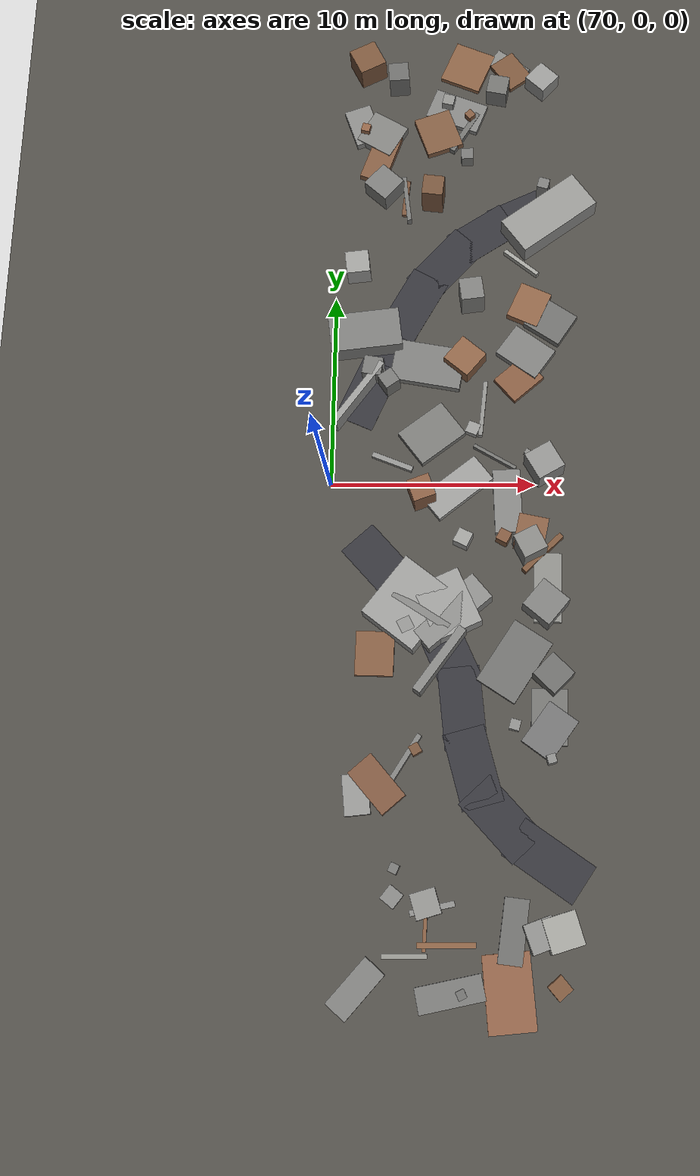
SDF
<sdf version="1.6">
 <world name="navitas_arena">
  <model name="ground_plane">
   <static>true</static>
   <link name="link">
    <collision name="collision">
     <geometry><plane><normal>0 0 1</normal><size>400 400</size></plane></geometry>
     <surface><friction><ode><mu>0.800</mu><mu2>0.800</mu2></ode></friction></surface>
    </collision>
    <visual name="visual">
     <cast_shadows>false</cast_shadows>
     <geometry><plane><normal>0 0 1</normal><size>400 400</size></plane></geometry>
     <material><ambient>0.300 0.290 0.270 1</ambient><diffuse>0.300 0.290 0.270 1</diffuse></material>
    </visual>
   </link>
  </model>
  <model name="road_zor_1_3">
   <static>true</static>
   <pose>80.295 -17.866 0.040 0 0 2.537</pose>
   <link name="link">
    <collision name="col"><geometry><box><size>3.848 2.000 0.020</size></box></geometry></collision>
    <visual name="vis">
     <geometry><box><size>3.848 2.000 0.020</size></box></geometry>
     <material><ambient>0.20 0.20 0.22 1</ambient><diffuse>0.20 0.20 0.22 1</diffuse></material>
    </visual>
   </link>
  </model>
  <model name="road_zor_1_4">
   <static>true</static>
   <pose>78.158 -16.014 0.040 0 0 2.310</pose>
   <link name="link">
    <collision name="col"><geometry><box><size>3.644 2.000 0.020</size></box></geometry></collision>
    <visual name="vis">
     <geometry><box><size>3.644 2.000 0.020</size></box></geometry>
     <material><ambient>0.20 0.20 0.22 1</ambient><diffuse>0.20 0.20 0.22 1</diffuse></material>
    </visual>
   </link>
  </model>
  <model name="road_zor_1_5">
   <static>true</static>
   <pose>76.886 -13.690 0.040 0 0 1.830</pose>
   <link name="link">
    <collision name="col"><geometry><box><size>3.611 2.000 0.020</size></box></geometry></collision>
    <visual name="vis">
     <geometry><box><size>3.611 2.000 0.020</size></box></geometry>
     <material><ambient>0.20 0.20 0.22 1</ambient><diffuse>0.20 0.20 0.22 1</diffuse></material>
    </visual>
   </link>
  </model>
  <model name="road_zor_1_6">
   <static>true</static>
   <pose>76.391 -10.910 0.040 0 0 1.670</pose>
   <link name="link">
    <collision name="col"><geometry><box><size>3.855 2.000 0.020</size></box></geometry></collision>
    <visual name="vis">
     <geometry><box><size>3.855 2.000 0.020</size></box></geometry>
     <material><ambient>0.20 0.20 0.22 1</ambient><diffuse>0.20 0.20 0.22 1</diffuse></material>
    </visual>
   </link>
  </model>
  <model name="road_zor_1_7">
   <static>true</static>
   <pose>75.702 -8.220 0.040 0 0 1.989</pose>
   <link name="link">
    <collision name="col"><geometry><box><size>3.570 2.000 0.020</size></box></geometry></collision>
    <visual name="vis">
     <geometry><box><size>3.570 2.000 0.020</size></box></geometry>
     <material><ambient>0.20 0.20 0.22 1</ambient><diffuse>0.20 0.20 0.22 1</diffuse></material>
    </visual>
   </link>
  </model>
  <model name="road_zor_1_8">
   <static>true</static>
   <pose>74.287 -6.000 0.040 0 0 2.288</pose>
   <link name="link">
    <collision name="col"><geometry><box><size>3.554 2.000 0.020</size></box></geometry></collision>
    <visual name="vis">
     <geometry><box><size>3.554 2.000 0.020</size></box></geometry>
     <material><ambient>0.20 0.20 0.22 1</ambient><diffuse>0.20 0.20 0.22 1</diffuse></material>
    </visual>
   </link>
  </model>
  <model name="road_zor_1_9">
   <static>true</static>
   <pose>72.512 -4.000 0.040 0 0 2.305</pose>
   <link name="link">
    <collision name="col"><geometry><box><size>3.594 2.000 0.020</size></box></geometry></collision>
    <visual name="vis">
     <geometry><box><size>3.594 2.000 0.020</size></box></geometry>
     <material><ambient>0.20 0.20 0.22 1</ambient><diffuse>0.20 0.20 0.22 1</diffuse></material>
    </visual>
   </link>
  </model>
  <model name="road_zor_1_12">
   <static>true</static>
   <pose>71.697 4.833 0.040 0 0 1.158</pose>
   <link name="link">
    <collision name="col"><geometry><box><size>3.448 2.000 0.020</size></box></geometry></collision>
    <visual name="vis">
     <geometry><box><size>3.448 2.000 0.020</size></box></geometry>
     <material><ambient>0.20 0.20 0.22 1</ambient><diffuse>0.20 0.20 0.22 1</diffuse></material>
    </visual>
   </link>
  </model>
  <model name="road_zor_1_13">
   <static>true</static>
   <pose>72.737 7.213 0.040 0 0 1.160</pose>
   <link name="link">
    <collision name="col"><geometry><box><size>3.546 2.000 0.020</size></box></geometry></collision>
    <visual name="vis">
     <geometry><box><size>3.546 2.000 0.020</size></box></geometry>
     <material><ambient>0.20 0.20 0.22 1</ambient><diffuse>0.20 0.20 0.22 1</diffuse></material>
    </visual>
   </link>
  </model>
  <model name="road_zor_1_14">
   <static>true</static>
   <pose>73.941 9.639 0.040 0 0 1.063</pose>
   <link name="link">
    <collision name="col"><geometry><box><size>3.676 2.000 0.020</size></box></geometry></collision>
    <visual name="vis">
     <geometry><box><size>3.676 2.000 0.020</size></box></geometry>
     <material><ambient>0.20 0.20 0.22 1</ambient><diffuse>0.20 0.20 0.22 1</diffuse></material>
    </visual>
   </link>
  </model>
  <model name="road_zor_1_15">
   <static>true</static>
   <pose>75.580 11.926 0.040 0 0 0.839</pose>
   <link name="link">
    <collision name="col"><geometry><box><size>3.788 2.000 0.020</size></box></geometry></collision>
    <visual name="vis">
     <geometry><box><size>3.788 2.000 0.020</size></box></geometry>
     <material><ambient>0.20 0.20 0.22 1</ambient><diffuse>0.20 0.20 0.22 1</diffuse></material>
    </visual>
   </link>
  </model>
  <model name="road_zor_1_16">
   <static>true</static>
   <pose>77.554 13.662 0.040 0 0 0.581</pose>
   <link name="link">
    <collision name="col"><geometry><box><size>3.312 2.000 0.020</size></box></geometry></collision>
    <visual name="vis">
     <geometry><box><size>3.312 2.000 0.020</size></box></geometry>
     <material><ambient>0.20 0.20 0.22 1</ambient><diffuse>0.20 0.20 0.22 1</diffuse></material>
    </visual>
   </link>
  </model>
  <model name="road_zor_1_17">
   <static>true</static>
   <pose>79.772 14.896 0.040 0 0 0.442</pose>
   <link name="link">
    <collision name="col"><geometry><box><size>3.577 2.000 0.020</size></box></geometry></collision>
    <visual name="vis">
     <geometry><box><size>3.577 2.000 0.020</size></box></geometry>
     <material><ambient>0.20 0.20 0.22 1</ambient><diffuse>0.20 0.20 0.22 1</diffuse></material>
    </visual>
   </link>
  </model>
  <model name="blk_zor_1_0_0">
   <static>true</static>
   <pose>75.685 -6.216 0.600 0 0 1.999</pose>
   <link name="link">
    <collision name="col"><geometry><box><size>2.811 2.353 1.200</size></box></geometry></collision>
    <visual name="vis">
     <geometry><box><size>2.811 2.353 1.200</size></box></geometry>
     <material><ambient>0.59 0.59 0.58 1</ambient><diffuse>0.59 0.59 0.58 1</diffuse></material>
    </visual>
   </link>
  </model>
  <model name="blk_zor_1_0_1">
   <static>true</static>
   <pose>73.903 -6.133 0.600 0 0 0.910</pose>
   <link name="link">
    <collision name="col"><geometry><box><size>3.381 3.038 1.200</size></box></geometry></collision>
    <visual name="vis">
     <geometry><box><size>3.381 3.038 1.200</size></box></geometry>
     <material><ambient>0.59 0.59 0.58 1</ambient><diffuse>0.59 0.59 0.58 1</diffuse></material>
    </visual>
   </link>
  </model>
  <model name="blk_zor_1_0_2">
   <static>true</static>
   <pose>75.864 -6.544 0.600 0 0 0.698</pose>
   <link name="link">
    <collision name="col"><geometry><box><size>3.885 1.461 1.200</size></box></geometry></collision>
    <visual name="vis">
     <geometry><box><size>3.885 1.461 1.200</size></box></geometry>
     <material><ambient>0.53 0.53 0.52 1</ambient><diffuse>0.53 0.53 0.52 1</diffuse></material>
    </visual>
   </link>
  </model>
  <model name="blk_zor_1_0_3">
   <static>true</static>
   <pose>75.345 -8.811 0.600 0 0 0.937</pose>
   <link name="link">
    <collision name="col"><geometry><box><size>3.662 0.418 1.200</size></box></geometry></collision>
    <visual name="vis">
     <geometry><box><size>3.662 0.418 1.200</size></box></geometry>
     <material><ambient>0.50 0.50 0.49 1</ambient><diffuse>0.50 0.50 0.49 1</diffuse></material>
    </visual>
   </link>
  </model>
  <model name="blk_zor_1_0_4">
   <static>true</static>
   <pose>73.745 -7.180 0.600 0 0 2.031</pose>
   <link name="link">
    <collision name="col"><geometry><box><size>0.646 0.646 1.200</size></box></geometry></collision>
    <visual name="vis">
     <geometry><box><size>0.646 0.646 1.200</size></box></geometry>
     <material><ambient>0.55 0.55 0.54 1</ambient><diffuse>0.55 0.55 0.54 1</diffuse></material>
    </visual>
   </link>
  </model>
  <model name="blk_zor_1_0_5">
   <static>true</static>
   <pose>74.465 -6.497 0.600 0 0 2.569</pose>
   <link name="link">
    <collision name="col"><geometry><box><size>3.087 0.372 1.200</size></box></geometry></collision>
    <visual name="vis">
     <geometry><box><size>3.087 0.372 1.200</size></box></geometry>
     <material><ambient>0.50 0.50 0.49 1</ambient><diffuse>0.50 0.50 0.49 1</diffuse></material>
    </visual>
   </link>
  </model>
  <model name="blk_zor_1_1_0">
   <static>true</static>
   <pose>71.985 5.893 0.600 0 0 2.975</pose>
   <link name="link">
    <collision name="col"><geometry><box><size>0.949 0.949 1.200</size></box></geometry></collision>
    <visual name="vis">
     <geometry><box><size>0.949 0.949 1.200</size></box></geometry>
     <material><ambient>0.45 0.45 0.44 1</ambient><diffuse>0.45 0.45 0.44 1</diffuse></material>
    </visual>
   </link>
  </model>
  <model name="blk_zor_1_1_2">
   <static>true</static>
   <pose>71.571 7.812 0.600 0 0 0.121</pose>
   <link name="link">
    <collision name="col"><geometry><box><size>3.555 1.991 1.200</size></box></geometry></collision>
    <visual name="vis">
     <geometry><box><size>3.555 1.991 1.200</size></box></geometry>
     <material><ambient>0.47 0.47 0.46 1</ambient><diffuse>0.47 0.47 0.46 1</diffuse></material>
    </visual>
   </link>
  </model>
  <model name="blk_zor_1_1_4">
   <static>true</static>
   <pose>72.787 5.217 0.600 0 0 0.607</pose>
   <link name="link">
    <collision name="col"><geometry><box><size>0.795 0.795 1.200</size></box></geometry></collision>
    <visual name="vis">
     <geometry><box><size>0.795 0.795 1.200</size></box></geometry>
     <material><ambient>0.45 0.45 0.44 1</ambient><diffuse>0.45 0.45 0.44 1</diffuse></material>
    </visual>
   </link>
  </model>
  <model name="blk_zor_1_1_5">
   <static>true</static>
   <pose>71.279 4.512 0.600 0 0 0.942</pose>
   <link name="link">
    <collision name="col"><geometry><box><size>3.916 0.319 1.200</size></box></geometry></collision>
    <visual name="vis">
     <geometry><box><size>3.916 0.319 1.200</size></box></geometry>
     <material><ambient>0.59 0.59 0.58 1</ambient><diffuse>0.59 0.59 0.58 1</diffuse></material>
    </visual>
   </link>
  </model>
  <model name="blk_zor_1_2_2">
   <static>true</static>
   <pose>80.897 14.363 0.600 0 0 0.631</pose>
   <link name="link">
    <collision name="col"><geometry><box><size>4.588 2.038 1.200</size></box></geometry></collision>
    <visual name="vis">
     <geometry><box><size>4.588 2.038 1.200</size></box></geometry>
     <material><ambient>0.57 0.57 0.56 1</ambient><diffuse>0.57 0.57 0.56 1</diffuse></material>
    </visual>
   </link>
  </model>
  <model name="blk_zor_1_2_3">
   <static>true</static>
   <pose>80.648 16.047 0.600 0 0 2.883</pose>
   <link name="link">
    <collision name="col"><geometry><box><size>0.571 0.571 1.200</size></box></geometry></collision>
    <visual name="vis">
     <geometry><box><size>0.571 0.571 1.200</size></box></geometry>
     <material><ambient>0.47 0.47 0.46 1</ambient><diffuse>0.47 0.47 0.46 1</diffuse></material>
    </visual>
   </link>
  </model>
  <model name="deb_zor_1">
   <static>true</static>
   <pose>71.219 19.963 0.202 0 0 1.911</pose>
   <link name="link">
    <collision name="col"><geometry><box><size>2.113 1.395 0.404</size></box></geometry></collision>
    <visual name="vis">
     <geometry><box><size>2.113 1.395 0.404</size></box></geometry>
     <material><ambient>0.52 0.52 0.51 1</ambient><diffuse>0.52 0.52 0.51 1</diffuse></material>
    </visual>
   </link>
  </model>
  <model name="deb_zor_3">
   <static>true</static>
   <pose>80.360 -6.127 0.667 0 0 2.444</pose>
   <link name="link">
    <collision name="col"><geometry><box><size>1.592 1.592 1.333</size></box></geometry></collision>
    <visual name="vis">
     <geometry><box><size>1.592 1.592 1.333</size></box></geometry>
     <material><ambient>0.48 0.48 0.47 1</ambient><diffuse>0.48 0.48 0.47 1</diffuse></material>
    </visual>
   </link>
  </model>
  <model name="deb_zor_4">
   <static>true</static>
   <pose>80.280 -3.524 0.215 0 0 0.763</pose>
   <link name="link">
    <collision name="col"><geometry><box><size>2.555 0.277 0.430</size></box></geometry></collision>
    <visual name="vis">
     <geometry><box><size>2.555 0.277 0.430</size></box></geometry>
     <material><ambient>0.47 0.33 0.23 1</ambient><diffuse>0.47 0.33 0.23 1</diffuse></material>
    </visual>
   </link>
  </model>
  <model name="deb_zor_6">
   <static>true</static>
   <pose>78.352 21.937 0.599 0 0 1.375</pose>
   <link name="link">
    <collision name="col"><geometry><box><size>1.071 1.071 1.198</size></box></geometry></collision>
    <visual name="vis">
     <geometry><box><size>1.071 1.071 1.198</size></box></geometry>
     <material><ambient>0.43 0.43 0.42 1</ambient><diffuse>0.43 0.43 0.42 1</diffuse></material>
    </visual>
   </link>
  </model>
  <model name="deb_zor_10">
   <static>true</static>
   <pose>79.641 -3.296 0.864 0 0 0.462</pose>
   <link name="link">
    <collision name="col"><geometry><box><size>1.221 1.221 1.728</size></box></geometry></collision>
    <visual name="vis">
     <geometry><box><size>1.221 1.221 1.728</size></box></geometry>
     <material><ambient>0.51 0.51 0.50 1</ambient><diffuse>0.51 0.51 0.50 1</diffuse></material>
    </visual>
   </link>
  </model>
  <model name="deb_zor_18">
   <static>true</static>
   <pose>78.442 -23.485 0.123 0 0 1.658</pose>
   <link name="link">
    <collision name="col"><geometry><box><size>3.368 2.165 0.246</size></box></geometry></collision>
    <visual name="vis">
     <geometry><box><size>3.368 2.165 0.246</size></box></geometry>
     <material><ambient>0.54 0.37 0.27 1</ambient><diffuse>0.54 0.37 0.27 1</diffuse></material>
    </visual>
   </link>
  </model>
  <model name="deb_zor_26">
   <static>true</static>
   <pose>79.883 -21.062 0.726 0 0 1.912</pose>
   <link name="link">
    <collision name="col"><geometry><box><size>1.338 1.338 1.452</size></box></geometry></collision>
    <visual name="vis">
     <geometry><box><size>1.338 1.338 1.452</size></box></geometry>
     <material><ambient>0.53 0.53 0.52 1</ambient><diffuse>0.53 0.53 0.52 1</diffuse></material>
    </visual>
   </link>
  </model>
  <model name="deb_zor_28">
   <static>true</static>
   <pose>76.875 20.470 0.347 0 0 0.719</pose>
   <link name="link">
    <collision name="col"><geometry><box><size>0.422 0.422 0.695</size></box></geometry></collision>
    <visual name="vis">
     <geometry><box><size>0.422 0.422 0.695</size></box></geometry>
     <material><ambient>0.50 0.35 0.25 1</ambient><diffuse>0.50 0.35 0.25 1</diffuse></material>
    </visual>
   </link>
  </model>
  <model name="deb_zor_35">
   <static>true</static>
   <pose>72.208 18.146 0.200 0 0 1.234</pose>
   <link name="link">
    <collision name="col"><geometry><box><size>2.969 1.328 0.401</size></box></geometry></collision>
    <visual name="vis">
     <geometry><box><size>2.969 1.328 0.401</size></box></geometry>
     <material><ambient>0.50 0.35 0.25 1</ambient><diffuse>0.50 0.35 0.25 1</diffuse></material>
    </visual>
   </link>
  </model>
  <model name="deb_zor_36">
   <static>true</static>
   <pose>79.619 6.919 0.220 0 0 2.516</pose>
   <link name="link">
    <collision name="col"><geometry><box><size>2.396 1.799 0.440</size></box></geometry></collision>
    <visual name="vis">
     <geometry><box><size>2.396 1.799 0.440</size></box></geometry>
     <material><ambient>0.48 0.48 0.47 1</ambient><diffuse>0.48 0.48 0.47 1</diffuse></material>
    </visual>
   </link>
  </model>
  <model name="deb_zor_37">
   <static>true</static>
   <pose>78.623 -0.887 0.168 0 0 1.609</pose>
   <link name="link">
    <collision name="col"><geometry><box><size>3.195 1.344 0.335</size></box></geometry></collision>
    <visual name="vis">
     <geometry><box><size>3.195 1.344 0.335</size></box></geometry>
     <material><ambient>0.50 0.50 0.49 1</ambient><diffuse>0.50 0.50 0.49 1</diffuse></material>
    </visual>
   </link>
  </model>
  <model name="deb_zor_39">
   <static>true</static>
   <pose>75.833 -23.523 0.214 0 0 0.199</pose>
   <link name="link">
    <collision name="col"><geometry><box><size>3.030 1.168 0.427</size></box></geometry></collision>
    <visual name="vis">
     <geometry><box><size>3.030 1.168 0.427</size></box></geometry>
     <material><ambient>0.45 0.45 0.44 1</ambient><diffuse>0.45 0.45 0.44 1</diffuse></material>
    </visual>
   </link>
  </model>
  <model name="deb_zor_47">
   <static>true</static>
   <pose>76.769 23.612 0.130 0 0 1.181</pose>
   <link name="link">
    <collision name="col"><geometry><box><size>2.355 2.170 0.260</size></box></geometry></collision>
    <visual name="vis">
     <geometry><box><size>2.355 2.170 0.260</size></box></geometry>
     <material><ambient>0.52 0.37 0.26 1</ambient><diffuse>0.52 0.37 0.26 1</diffuse></material>
    </visual>
   </link>
  </model>
  <model name="deb_zor_48">
   <static>true</static>
   <pose>73.095 22.552 0.733 0 0 0.090</pose>
   <link name="link">
    <collision name="col"><geometry><box><size>1.053 1.053 1.466</size></box></geometry></collision>
    <visual name="vis">
     <geometry><box><size>1.053 1.053 1.466</size></box></geometry>
     <material><ambient>0.41 0.41 0.40 1</ambient><diffuse>0.41 0.41 0.40 1</diffuse></material>
    </visual>
   </link>
  </model>
  <model name="deb_zor_49">
   <static>true</static>
   <pose>80.712 22.527 0.499 0 0 2.395</pose>
   <link name="link">
    <collision name="col"><geometry><box><size>1.248 1.248 0.997</size></box></geometry></collision>
    <visual name="vis">
     <geometry><box><size>1.248 1.248 0.997</size></box></geometry>
     <material><ambient>0.58 0.58 0.57 1</ambient><diffuse>0.58 0.58 0.57 1</diffuse></material>
    </visual>
   </link>
  </model>
  <model name="deb_zor_54">
   <static>true</static>
   <pose>71.119 11.557 0.625 0 0 1.688</pose>
   <link name="link">
    <collision name="col"><geometry><box><size>1.183 1.183 1.249</size></box></geometry></collision>
    <visual name="vis">
     <geometry><box><size>1.183 1.183 1.249</size></box></geometry>
     <material><ambient>0.60 0.60 0.59 1</ambient><diffuse>0.60 0.60 0.59 1</diffuse></material>
    </visual>
   </link>
  </model>
  <model name="deb_zor_56">
   <static>true</static>
   <pose>79.475 11.938 0.177 0 0 2.468</pose>
   <link name="link">
    <collision name="col"><geometry><box><size>2.119 0.202 0.353</size></box></geometry></collision>
    <visual name="vis">
     <geometry><box><size>2.119 0.202 0.353</size></box></geometry>
     <material><ambient>0.62 0.62 0.60 1</ambient><diffuse>0.62 0.62 0.60 1</diffuse></material>
    </visual>
   </link>
  </model>
  <model name="deb_zor_58">
   <static>true</static>
   <pose>78.414 -2.763 0.387 0 0 2.637</pose>
   <link name="link">
    <collision name="col"><geometry><box><size>0.586 0.586 0.773</size></box></geometry></collision>
    <visual name="vis">
     <geometry><box><size>0.586 0.586 0.773</size></box></geometry>
     <material><ambient>0.49 0.34 0.24 1</ambient><diffuse>0.49 0.34 0.24 1</diffuse></material>
    </visual>
   </link>
  </model>
  <model name="deb_zor_59">
   <static>true</static>
   <pose>78.870 -8.773 0.121 0 0 0.990</pose>
   <link name="link">
    <collision name="col"><geometry><box><size>3.394 2.127 0.243</size></box></geometry></collision>
    <visual name="vis">
     <geometry><box><size>3.394 2.127 0.243</size></box></geometry>
     <material><ambient>0.42 0.42 0.41 1</ambient><diffuse>0.42 0.42 0.41 1</diffuse></material>
    </visual>
   </link>
  </model>
  <model name="deb_zor_61">
   <static>true</static>
   <pose>79.104 23.371 0.134 0 0 2.196</pose>
   <link name="link">
    <collision name="col"><geometry><box><size>1.806 1.419 0.269</size></box></geometry></collision>
    <visual name="vis">
     <geometry><box><size>1.806 1.419 0.269</size></box></geometry>
     <material><ambient>0.47 0.33 0.23 1</ambient><diffuse>0.47 0.33 0.23 1</diffuse></material>
    </visual>
   </link>
  </model>
  <model name="deb_zor_77">
   <static>true</static>
   <pose>75.722 -0.463 0.150 0 0 2.968</pose>
   <link name="link">
    <collision name="col"><geometry><box><size>1.694 0.263 0.301</size></box></geometry></collision>
    <visual name="vis">
     <geometry><box><size>1.694 0.263 0.301</size></box></geometry>
     <material><ambient>0.48 0.34 0.24 1</ambient><diffuse>0.48 0.34 0.24 1</diffuse></material>
    </visual>
   </link>
  </model>
  <model name="deb_zor_79">
   <static>true</static>
   <pose>74.704 -20.975 0.165 0 0 1.513</pose>
   <link name="link">
    <collision name="col"><geometry><box><size>1.585 0.167 0.330</size></box></geometry></collision>
    <visual name="vis">
     <geometry><box><size>1.585 0.167 0.330</size></box></geometry>
     <material><ambient>0.50 0.35 0.25 1</ambient><diffuse>0.50 0.35 0.25 1</diffuse></material>
    </visual>
   </link>
  </model>
  <model name="deb_zor_80">
   <static>true</static>
   <pose>73.796 -21.940 0.128 0 0 3.134</pose>
   <link name="link">
    <collision name="col"><geometry><box><size>2.030 0.206 0.255</size></box></geometry></collision>
    <visual name="vis">
     <geometry><box><size>2.030 0.206 0.255</size></box></geometry>
     <material><ambient>0.55 0.55 0.53 1</ambient><diffuse>0.55 0.55 0.53 1</diffuse></material>
    </visual>
   </link>
  </model>
  <model name="deb_zor_81">
   <static>true</static>
   <pose>76.452 -2.838 0.397 0 0 1.111</pose>
   <link name="link">
    <collision name="col"><geometry><box><size>0.729 0.729 0.794</size></box></geometry></collision>
    <visual name="vis">
     <geometry><box><size>0.729 0.729 0.794</size></box></geometry>
     <material><ambient>0.60 0.60 0.59 1</ambient><diffuse>0.60 0.60 0.59 1</diffuse></material>
    </visual>
   </link>
  </model>
  <model name="deb_zor_82">
   <static>true</static>
   <pose>78.840 -11.751 0.229 0 0 2.884</pose>
   <link name="link">
    <collision name="col"><geometry><box><size>0.493 0.493 0.458</size></box></geometry></collision>
    <visual name="vis">
     <geometry><box><size>0.493 0.493 0.458</size></box></geometry>
     <material><ambient>0.53 0.53 0.52 1</ambient><diffuse>0.53 0.53 0.52 1</diffuse></material>
    </visual>
   </link>
  </model>
  <model name="deb_zor_83">
   <static>true</static>
   <pose>75.030 -19.911 0.165 0 0 0.208</pose>
   <link name="link">
    <collision name="col"><geometry><box><size>2.068 0.265 0.329</size></box></geometry></collision>
    <visual name="vis">
     <geometry><box><size>2.068 0.265 0.329</size></box></geometry>
     <material><ambient>0.52 0.52 0.51 1</ambient><diffuse>0.52 0.52 0.51 1</diffuse></material>
    </visual>
   </link>
  </model>
  <model name="deb_zor_92">
   <static>true</static>
   <pose>73.780 -13.225 0.224 0 0 1.009</pose>
   <link name="link">
    <collision name="col"><geometry><box><size>2.416 0.240 0.448</size></box></geometry></collision>
    <visual name="vis">
     <geometry><box><size>2.416 0.240 0.448</size></box></geometry>
     <material><ambient>0.48 0.48 0.47 1</ambient><diffuse>0.48 0.48 0.47 1</diffuse></material>
    </visual>
   </link>
  </model>
  <model name="deb_zor_107">
   <static>true</static>
   <pose>80.502 -5.220 0.156 0 0 1.551</pose>
   <link name="link">
    <collision name="col"><geometry><box><size>3.374 1.336 0.312</size></box></geometry></collision>
    <visual name="vis">
     <geometry><box><size>3.374 1.336 0.312</size></box></geometry>
     <material><ambient>0.53 0.53 0.51 1</ambient><diffuse>0.53 0.53 0.51 1</diffuse></material>
    </visual>
   </link>
  </model>
  <model name="deb_zor_122">
   <static>true</static>
   <pose>79.265 5.512 0.165 0 0 0.714</pose>
   <link name="link">
    <collision name="col"><geometry><box><size>1.955 1.550 0.330</size></box></geometry></collision>
    <visual name="vis">
     <geometry><box><size>1.955 1.550 0.330</size></box></geometry>
     <material><ambient>0.51 0.35 0.25 1</ambient><diffuse>0.51 0.35 0.25 1</diffuse></material>
    </visual>
   </link>
  </model>
  <model name="deb_zor_124">
   <static>true</static>
   <pose>76.171 20.889 0.156 0 0 2.774</pose>
   <link name="link">
    <collision name="col"><geometry><box><size>2.875 1.707 0.312</size></box></geometry></collision>
    <visual name="vis">
     <geometry><box><size>2.875 1.707 0.312</size></box></geometry>
     <material><ambient>0.50 0.50 0.49 1</ambient><diffuse>0.50 0.50 0.49 1</diffuse></material>
    </visual>
   </link>
  </model>
  <model name="deb_zor_126">
   <static>true</static>
   <pose>80.902 8.642 0.221 0 0 0.984</pose>
   <link name="link">
    <collision name="col"><geometry><box><size>1.815 2.062 0.443</size></box></geometry></collision>
    <visual name="vis">
     <geometry><box><size>1.815 2.062 0.443</size></box></geometry>
     <material><ambient>0.42 0.42 0.41 1</ambient><diffuse>0.42 0.42 0.41 1</diffuse></material>
    </visual>
   </link>
  </model>
  <model name="deb_zor_128">
   <static>true</static>
   <pose>78.974 23.666 0.127 0 0 2.495</pose>
   <link name="link">
    <collision name="col"><geometry><box><size>2.044 1.024 0.255</size></box></geometry></collision>
    <visual name="vis">
     <geometry><box><size>2.044 1.024 0.255</size></box></geometry>
     <material><ambient>0.51 0.51 0.50 1</ambient><diffuse>0.51 0.51 0.50 1</diffuse></material>
    </visual>
   </link>
  </model>
  <model name="deb_zor_129">
   <static>true</static>
   <pose>78.023 1.401 0.155 0 0 2.615</pose>
   <link name="link">
    <collision name="col"><geometry><box><size>2.355 0.173 0.309</size></box></geometry></collision>
    <visual name="vis">
     <geometry><box><size>2.355 0.173 0.309</size></box></geometry>
     <material><ambient>0.43 0.43 0.42 1</ambient><diffuse>0.43 0.43 0.42 1</diffuse></material>
    </visual>
   </link>
  </model>
  <model name="deb_zor_131">
   <static>true</static>
   <pose>72.462 -14.454 0.228 0 0 2.277</pose>
   <link name="link">
    <collision name="col"><geometry><box><size>2.494 1.399 0.457</size></box></geometry></collision>
    <visual name="vis">
     <geometry><box><size>2.494 1.399 0.457</size></box></geometry>
     <material><ambient>0.48 0.33 0.24 1</ambient><diffuse>0.48 0.33 0.24 1</diffuse></material>
    </visual>
   </link>
  </model>
  <model name="deb_zor_134">
   <static>true</static>
   <pose>80.405 0.842 0.741 0 0 0.519</pose>
   <link name="link">
    <collision name="col"><geometry><box><size>1.428 1.428 1.482</size></box></geometry></collision>
    <visual name="vis">
     <geometry><box><size>1.428 1.428 1.482</size></box></geometry>
     <material><ambient>0.55 0.55 0.54 1</ambient><diffuse>0.55 0.55 0.54 1</diffuse></material>
    </visual>
   </link>
  </model>
  <model name="deb_zor_137">
   <static>true</static>
   <pose>78.655 -20.899 0.230 0 0 1.439</pose>
   <link name="link">
    <collision name="col"><geometry><box><size>2.877 1.125 0.460</size></box></geometry></collision>
    <visual name="vis">
     <geometry><box><size>2.877 1.125 0.460</size></box></geometry>
     <material><ambient>0.41 0.41 0.40 1</ambient><diffuse>0.41 0.41 0.40 1</diffuse></material>
    </visual>
   </link>
  </model>
  <model name="deb_zor_138">
   <static>true</static>
   <pose>73.513 15.723 0.113 0 0 1.463</pose>
   <link name="link">
    <collision name="col"><geometry><box><size>1.985 0.241 0.226</size></box></geometry></collision>
    <visual name="vis">
     <geometry><box><size>1.985 0.241 0.226</size></box></geometry>
     <material><ambient>0.46 0.32 0.23 1</ambient><diffuse>0.46 0.32 0.23 1</diffuse></material>
    </visual>
   </link>
  </model>
  <model name="deb_zor_140">
   <static>true</static>
   <pose>71.381 19.613 0.397 0 0 2.901</pose>
   <link name="link">
    <collision name="col"><geometry><box><size>0.439 0.439 0.794</size></box></geometry></collision>
    <visual name="vis">
     <geometry><box><size>0.439 0.439 0.794</size></box></geometry>
     <material><ambient>0.55 0.38 0.27 1</ambient><diffuse>0.55 0.38 0.27 1</diffuse></material>
    </visual>
   </link>
  </model>
  <model name="deb_zor_149">
   <static>true</static>
   <pose>75.205 19.550 0.189 0 0 1.917</pose>
   <link name="link">
    <collision name="col"><geometry><box><size>2.196 1.937 0.377</size></box></geometry></collision>
    <visual name="vis">
     <geometry><box><size>2.196 1.937 0.377</size></box></geometry>
     <material><ambient>0.49 0.35 0.25 1</ambient><diffuse>0.49 0.35 0.25 1</diffuse></material>
    </visual>
   </link>
  </model>
  <model name="deb_zor_153">
   <static>true</static>
   <pose>80.645 -9.482 0.591 0 0 0.796</pose>
   <link name="link">
    <collision name="col"><geometry><box><size>1.391 1.391 1.182</size></box></geometry></collision>
    <visual name="vis">
     <geometry><box><size>1.391 1.391 1.182</size></box></geometry>
     <material><ambient>0.41 0.41 0.40 1</ambient><diffuse>0.41 0.41 0.40 1</diffuse></material>
    </visual>
   </link>
  </model>
  <model name="deb_zor_166">
   <static>true</static>
   <pose>76.325 -23.535 0.333 0 0 2.016</pose>
   <link name="link">
    <collision name="col"><geometry><box><size>0.406 0.406 0.667</size></box></geometry></collision>
    <visual name="vis">
     <geometry><box><size>0.406 0.406 0.667</size></box></geometry>
     <material><ambient>0.41 0.41 0.40 1</ambient><diffuse>0.41 0.41 0.40 1</diffuse></material>
    </visual>
   </link>
  </model>
  <model name="deb_zor_174">
   <static>true</static>
   <pose>79.559 -2.591 0.387 0 0 2.352</pose>
   <link name="link">
    <collision name="col"><geometry><box><size>0.447 0.447 0.775</size></box></geometry></collision>
    <visual name="vis">
     <geometry><box><size>0.447 0.447 0.775</size></box></geometry>
     <material><ambient>0.47 0.47 0.46 1</ambient><diffuse>0.47 0.47 0.46 1</diffuse></material>
    </visual>
   </link>
  </model>
  <model name="deb_zor_176">
   <static>true</static>
   <pose>71.442 23.484 0.705 0 0 0.472</pose>
   <link name="link">
    <collision name="col"><geometry><box><size>1.455 1.455 1.411</size></box></geometry></collision>
    <visual name="vis">
     <geometry><box><size>1.455 1.455 1.411</size></box></geometry>
     <material><ambient>0.47 0.33 0.23 1</ambient><diffuse>0.47 0.33 0.23 1</diffuse></material>
    </visual>
   </link>
  </model>
  <model name="deb_zor_178">
   <static>true</static>
   <pose>71.660 -23.300 0.195 0 0 0.841</pose>
   <link name="link">
    <collision name="col"><geometry><box><size>2.614 1.178 0.389</size></box></geometry></collision>
    <visual name="vis">
     <geometry><box><size>2.614 1.178 0.389</size></box></geometry>
     <material><ambient>0.47 0.47 0.46 1</ambient><diffuse>0.47 0.47 0.46 1</diffuse></material>
    </visual>
   </link>
  </model>
  <model name="deb_zor_186">
   <static>true</static>
   <pose>77.453 3.929 0.170 0 0 1.471</pose>
   <link name="link">
    <collision name="col"><geometry><box><size>2.867 0.207 0.341</size></box></geometry></collision>
    <visual name="vis">
     <geometry><box><size>2.867 0.207 0.341</size></box></geometry>
     <material><ambient>0.54 0.54 0.53 1</ambient><diffuse>0.54 0.54 0.53 1</diffuse></material>
    </visual>
   </link>
  </model>
  <model name="deb_zor_191">
   <static>true</static>
   <pose>76.950 2.868 0.201 0 0 2.745</pose>
   <link name="link">
    <collision name="col"><geometry><box><size>0.610 0.610 0.402</size></box></geometry></collision>
    <visual name="vis">
     <geometry><box><size>0.610 0.610 0.402</size></box></geometry>
     <material><ambient>0.58 0.58 0.57 1</ambient><diffuse>0.58 0.58 0.57 1</diffuse></material>
    </visual>
   </link>
  </model>
  <model name="deb_zor_193">
   <static>true</static>
   <pose>71.522 -14.907 0.169 0 0 1.670</pose>
   <link name="link">
    <collision name="col"><geometry><box><size>1.880 1.195 0.339</size></box></geometry></collision>
    <visual name="vis">
     <geometry><box><size>1.880 1.195 0.339</size></box></geometry>
     <material><ambient>0.56 0.56 0.55 1</ambient><diffuse>0.56 0.56 0.55 1</diffuse></material>
    </visual>
   </link>
  </model>
  <model name="deb_zor_194">
   <static>true</static>
   <pose>80.500 -13.346 0.352 0 0 0.261</pose>
   <link name="link">
    <collision name="col"><geometry><box><size>0.416 0.416 0.704</size></box></geometry></collision>
    <visual name="vis">
     <geometry><box><size>0.416 0.416 0.704</size></box></geometry>
     <material><ambient>0.52 0.52 0.51 1</ambient><diffuse>0.52 0.52 0.51 1</diffuse></material>
    </visual>
   </link>
  </model>
  <model name="deb_zor_197">
   <static>true</static>
   <pose>74.920 2.584 0.217 0 0 0.650</pose>
   <link name="link">
    <collision name="col"><geometry><box><size>2.676 2.018 0.435</size></box></geometry></collision>
    <visual name="vis">
     <geometry><box><size>2.676 2.018 0.435</size></box></geometry>
     <material><ambient>0.46 0.46 0.45 1</ambient><diffuse>0.46 0.46 0.45 1</diffuse></material>
    </visual>
   </link>
  </model>
  <model name="deb_zor_198">
   <static>true</static>
   <pose>79.837 9.487 0.239 0 0 1.152</pose>
   <link name="link">
    <collision name="col"><geometry><box><size>1.936 1.644 0.479</size></box></geometry></collision>
    <visual name="vis">
     <geometry><box><size>1.936 1.644 0.479</size></box></geometry>
     <material><ambient>0.54 0.38 0.27 1</ambient><diffuse>0.54 0.38 0.27 1</diffuse></material>
    </visual>
   </link>
  </model>
  <model name="deb_zor_201">
   <static>true</static>
   <pose>75.683 -21.479 0.238 0 0 0.004</pose>
   <link name="link">
    <collision name="col"><geometry><box><size>2.629 0.261 0.476</size></box></geometry></collision>
    <visual name="vis">
     <geometry><box><size>2.629 0.261 0.476</size></box></geometry>
     <material><ambient>0.52 0.37 0.26 1</ambient><diffuse>0.52 0.37 0.26 1</diffuse></material>
    </visual>
   </link>
  </model>
  <model name="deb_zor_203">
   <static>true</static>
   <pose>80.134 1.231 0.172 0 0 2.469</pose>
   <link name="link">
    <collision name="col"><geometry><box><size>1.538 0.277 0.343</size></box></geometry></collision>
    <visual name="vis">
     <geometry><box><size>1.538 0.277 0.343</size></box></geometry>
     <material><ambient>0.51 0.51 0.50 1</ambient><diffuse>0.51 0.51 0.50 1</diffuse></material>
    </visual>
   </link>
  </model>
  <model name="deb_zor_205">
   <static>true</static>
   <pose>73.557 15.576 0.221 0 0 1.689</pose>
   <link name="link">
    <collision name="col"><geometry><box><size>2.515 0.217 0.442</size></box></geometry></collision>
    <visual name="vis">
     <geometry><box><size>2.515 0.217 0.442</size></box></geometry>
     <material><ambient>0.45 0.45 0.44 1</ambient><diffuse>0.45 0.45 0.44 1</diffuse></material>
    </visual>
   </link>
  </model>
  <model name="deb_zor_209">
   <static>true</static>
   <pose>76.902 9.840 0.857 0 0 1.703</pose>
   <link name="link">
    <collision name="col"><geometry><box><size>1.156 1.156 1.714</size></box></geometry></collision>
    <visual name="vis">
     <geometry><box><size>1.156 1.156 1.714</size></box></geometry>
     <material><ambient>0.48 0.48 0.47 1</ambient><diffuse>0.48 0.48 0.47 1</diffuse></material>
    </visual>
   </link>
  </model>
  <model name="deb_zor_218">
   <static>true</static>
   <pose>79.720 -2.640 0.646 0 0 1.363</pose>
   <link name="link">
    <collision name="col"><geometry><box><size>1.448 1.448 1.293</size></box></geometry></collision>
    <visual name="vis">
     <geometry><box><size>1.448 1.448 1.293</size></box></geometry>
     <material><ambient>0.51 0.36 0.26 1</ambient><diffuse>0.51 0.36 0.26 1</diffuse></material>
    </visual>
   </link>
  </model>
  <model name="deb_zor_224">
   <static>true</static>
   <pose>76.708 18.058 0.372 0 0 0.038</pose>
   <link name="link">
    <collision name="col"><geometry><box><size>0.617 0.617 0.744</size></box></geometry></collision>
    <visual name="vis">
     <geometry><box><size>0.617 0.617 0.744</size></box></geometry>
     <material><ambient>0.45 0.45 0.44 1</ambient><diffuse>0.45 0.45 0.44 1</diffuse></material>
    </visual>
   </link>
  </model>
  <model name="deb_zor_232">
   <static>true</static>
   <pose>74.953 15.573 0.940 0 0 1.452</pose>
   <link name="link">
    <collision name="col"><geometry><box><size>1.075 1.075 1.879</size></box></geometry></collision>
    <visual name="vis">
     <geometry><box><size>1.075 1.075 1.879</size></box></geometry>
     <material><ambient>0.45 0.32 0.23 1</ambient><diffuse>0.45 0.32 0.23 1</diffuse></material>
    </visual>
   </link>
  </model>
  <model name="deb_zor_233">
   <static>true</static>
   <pose>72.407 16.179 0.569 0 0 0.843</pose>
   <link name="link">
    <collision name="col"><geometry><box><size>1.439 1.439 1.138</size></box></geometry></collision>
    <visual name="vis">
     <geometry><box><size>1.439 1.439 1.138</size></box></geometry>
     <material><ambient>0.47 0.47 0.46 1</ambient><diffuse>0.47 0.47 0.46 1</diffuse></material>
    </visual>
   </link>
  </model>
  <model name="deb_zor_241">
   <static>true</static>
   <pose>72.264 -8.382 0.131 0 0 3.112</pose>
   <link name="link">
    <collision name="col"><geometry><box><size>1.827 2.113 0.262</size></box></geometry></collision>
    <visual name="vis">
     <geometry><box><size>1.827 2.113 0.262</size></box></geometry>
     <material><ambient>0.50 0.35 0.25 1</ambient><diffuse>0.50 0.35 0.25 1</diffuse></material>
    </visual>
   </link>
  </model>
  <model name="deb_zor_243">
   <static>true</static>
   <pose>74.717 6.267 0.223 0 0 2.968</pose>
   <link name="link">
    <collision name="col"><geometry><box><size>3.530 2.140 0.446</size></box></geometry></collision>
    <visual name="vis">
     <geometry><box><size>3.530 2.140 0.446</size></box></geometry>
     <material><ambient>0.47 0.47 0.46 1</ambient><diffuse>0.47 0.47 0.46 1</diffuse></material>
    </visual>
   </link>
  </model>
  <model name="deb_zor_257">
   <static>true</static>
   <pose>72.240 19.423 0.232 0 0 2.617</pose>
   <link name="link">
    <collision name="col"><geometry><box><size>2.003 1.893 0.465</size></box></geometry></collision>
    <visual name="vis">
     <geometry><box><size>2.003 1.893 0.465</size></box></geometry>
     <material><ambient>0.49 0.49 0.48 1</ambient><diffuse>0.49 0.49 0.48 1</diffuse></material>
    </visual>
   </link>
  </model>
  <model name="deb_zor_262">
   <static>true</static>
   <pose>74.449 -0.607 0.842 0 0 1.919</pose>
   <link name="link">
    <collision name="col"><geometry><box><size>1.110 1.110 1.684</size></box></geometry></collision>
    <visual name="vis">
     <geometry><box><size>1.110 1.110 1.684</size></box></geometry>
     <material><ambient>0.52 0.36 0.26 1</ambient><diffuse>0.52 0.36 0.26 1</diffuse></material>
    </visual>
   </link>
  </model>
  <model name="deb_zor_263">
   <static>true</static>
   <pose>76.593 19.604 0.177 0 0 1.018</pose>
   <link name="link">
    <collision name="col"><geometry><box><size>2.590 0.286 0.355</size></box></geometry></collision>
    <visual name="vis">
     <geometry><box><size>2.590 0.286 0.355</size></box></geometry>
     <material><ambient>0.43 0.43 0.42 1</ambient><diffuse>0.43 0.43 0.42 1</diffuse></material>
    </visual>
   </link>
  </model>
  <model name="deb_zor_267">
   <static>true</static>
   <pose>75.743 21.288 0.399 0 0 1.331</pose>
   <link name="link">
    <collision name="col"><geometry><box><size>0.597 0.597 0.798</size></box></geometry></collision>
    <visual name="vis">
     <geometry><box><size>0.597 0.597 0.798</size></box></geometry>
     <material><ambient>0.54 0.54 0.53 1</ambient><diffuse>0.54 0.54 0.53 1</diffuse></material>
    </visual>
   </link>
  </model>
  <model name="deb_zor_270">
   <static>true</static>
   <pose>80.458 -11.385 0.129 0 0 1.542</pose>
   <link name="link">
    <collision name="col"><geometry><box><size>2.649 1.696 0.257</size></box></geometry></collision>
    <visual name="vis">
     <geometry><box><size>2.649 1.696 0.257</size></box></geometry>
     <material><ambient>0.43 0.43 0.42 1</ambient><diffuse>0.43 0.43 0.42 1</diffuse></material>
    </visual>
   </link>
  </model>
  <model name="deb_zor_272">
   <static>true</static>
   <pose>80.802 -20.933 0.818 0 0 1.861</pose>
   <link name="link">
    <collision name="col"><geometry><box><size>1.535 1.535 1.636</size></box></geometry></collision>
    <visual name="vis">
     <geometry><box><size>1.535 1.535 1.636</size></box></geometry>
     <material><ambient>0.61 0.61 0.59 1</ambient><diffuse>0.61 0.61 0.59 1</diffuse></material>
    </visual>
   </link>
  </model>
  <model name="deb_zor_274">
   <static>true</static>
   <pose>80.676 -23.279 0.349 0 0 0.703</pose>
   <link name="link">
    <collision name="col"><geometry><box><size>0.798 0.798 0.698</size></box></geometry></collision>
    <visual name="vis">
     <geometry><box><size>0.798 0.798 0.698</size></box></geometry>
     <material><ambient>0.47 0.33 0.23 1</ambient><diffuse>0.47 0.33 0.23 1</diffuse></material>
    </visual>
   </link>
  </model>
  <model name="deb_zor_276">
   <static>true</static>
   <pose>74.750 -19.723 0.601 0 0 0.284</pose>
   <link name="link">
    <collision name="col"><geometry><box><size>1.171 1.171 1.203</size></box></geometry></collision>
    <visual name="vis">
     <geometry><box><size>1.171 1.171 1.203</size></box></geometry>
     <material><ambient>0.54 0.54 0.53 1</ambient><diffuse>0.54 0.54 0.53 1</diffuse></material>
    </visual>
   </link>
  </model>
  <model name="deb_zor_278">
   <static>true</static>
   <pose>73.298 -18.180 0.337 0 0 2.714</pose>
   <link name="link">
    <collision name="col"><geometry><box><size>0.431 0.431 0.674</size></box></geometry></collision>
    <visual name="vis">
     <geometry><box><size>0.431 0.431 0.674</size></box></geometry>
     <material><ambient>0.44 0.44 0.43 1</ambient><diffuse>0.44 0.44 0.43 1</diffuse></material>
    </visual>
   </link>
  </model>
  <model name="deb_zor_296">
   <static>true</static>
   <pose>72.982 1.169 0.130 0 0 2.764</pose>
   <link name="link">
    <collision name="col"><geometry><box><size>2.113 0.261 0.260</size></box></geometry></collision>
    <visual name="vis">
     <geometry><box><size>2.113 0.261 0.260</size></box></geometry>
     <material><ambient>0.55 0.55 0.54 1</ambient><diffuse>0.55 0.55 0.54 1</diffuse></material>
    </visual>
   </link>
  </model>
  <model name="deb_zor_297">
   <static>true</static>
   <pose>76.569 6.483 0.490 0 0 2.449</pose>
   <link name="link">
    <collision name="col"><geometry><box><size>1.508 1.508 0.980</size></box></geometry></collision>
    <visual name="vis">
     <geometry><box><size>1.508 1.508 0.980</size></box></geometry>
     <material><ambient>0.54 0.38 0.27 1</ambient><diffuse>0.54 0.38 0.27 1</diffuse></material>
    </visual>
   </link>
  </model>
  <model name="deb_zor_299">
   <static>true</static>
   <pose>73.219 -19.400 0.235 0 0 2.470</pose>
   <link name="link">
    <collision name="col"><geometry><box><size>0.774 0.774 0.470</size></box></geometry></collision>
    <visual name="vis">
     <geometry><box><size>0.774 0.774 0.470</size></box></geometry>
     <material><ambient>0.50 0.50 0.49 1</ambient><diffuse>0.50 0.50 0.49 1</diffuse></material>
    </visual>
   </link>
  </model>
  <model name="deb_zor_308">
   <static>true</static>
   <pose>74.225 -12.876 0.277 0 0 0.524</pose>
   <link name="link">
    <collision name="col"><geometry><box><size>0.480 0.480 0.554</size></box></geometry></collision>
    <visual name="vis">
     <geometry><box><size>0.480 0.480 0.554</size></box></geometry>
     <material><ambient>0.45 0.32 0.23 1</ambient><diffuse>0.45 0.32 0.23 1</diffuse></material>
    </visual>
   </link>
  </model>
  <model name="deb_zor_323">
   <static>true</static>
   <pose>76.163 -0.224 0.206 0 0 0.669</pose>
   <link name="link">
    <collision name="col"><geometry><box><size>3.332 1.493 0.413</size></box></geometry></collision>
    <visual name="vis">
     <geometry><box><size>3.332 1.493 0.413</size></box></geometry>
     <material><ambient>0.59 0.59 0.58 1</ambient><diffuse>0.59 0.59 0.58 1</diffuse></material>
    </visual>
   </link>
  </model>
  <model name="deb_zor_325">
   <static>true</static>
   <pose>80.472 -12.053 0.140 0 0 0.939</pose>
   <link name="link">
    <collision name="col"><geometry><box><size>2.290 1.665 0.280</size></box></geometry></collision>
    <visual name="vis">
     <geometry><box><size>2.290 1.665 0.280</size></box></geometry>
     <material><ambient>0.43 0.43 0.43 1</ambient><diffuse>0.43 0.43 0.43 1</diffuse></material>
    </visual>
   </link>
  </model>
 </world>
</sdf>
